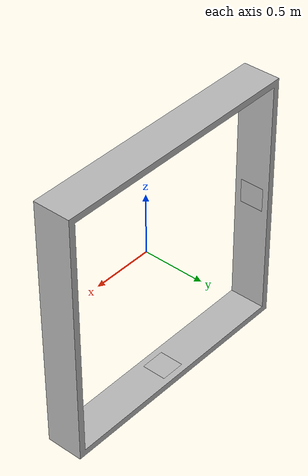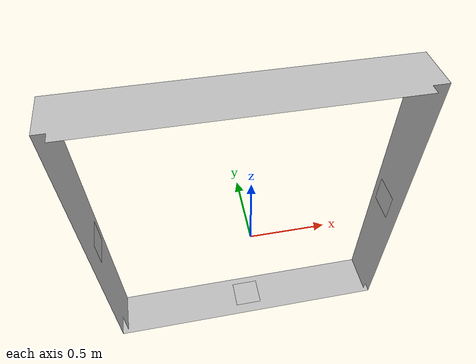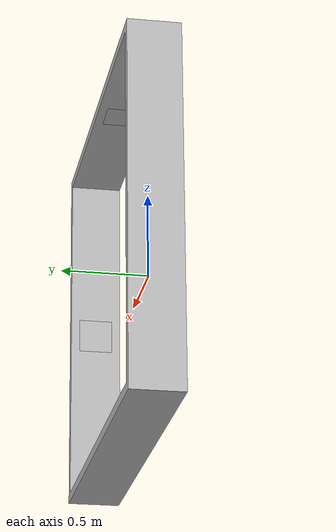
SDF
<?xml version="1.0"?>
<sdf version="1.8">
  <model name="apriltag-box">
    <static>true</static>
    <!-- The OBJ's Bottom face is local X=0; rotate it onto Gazebo's Z=0 plane. -->
    <pose>0 0 0 0 -1.57079632679 0</pose>

    <link name="walls_link">
      <collision name="collision">
        <geometry>
          <mesh>
            <uri>model://apriltag-box/meshes/walls/wallsv2.obj</uri>
          </mesh>
        </geometry>
      </collision>

      <visual name="walls">
        <cast_shadows>false</cast_shadows>
        <geometry>
          <mesh>
            <uri>model://apriltag-box/meshes/walls/wallsv2.obj</uri>
          </mesh>
        </geometry>
      </visual>

      <visual name="tags">
        <cast_shadows>false</cast_shadows>
        <geometry>
          <mesh>
            <uri>model://apriltag-box/meshes/tags/tagsv2.obj</uri>
          </mesh>
        </geometry>
      </visual>
    </link>
  </model>
</sdf>
